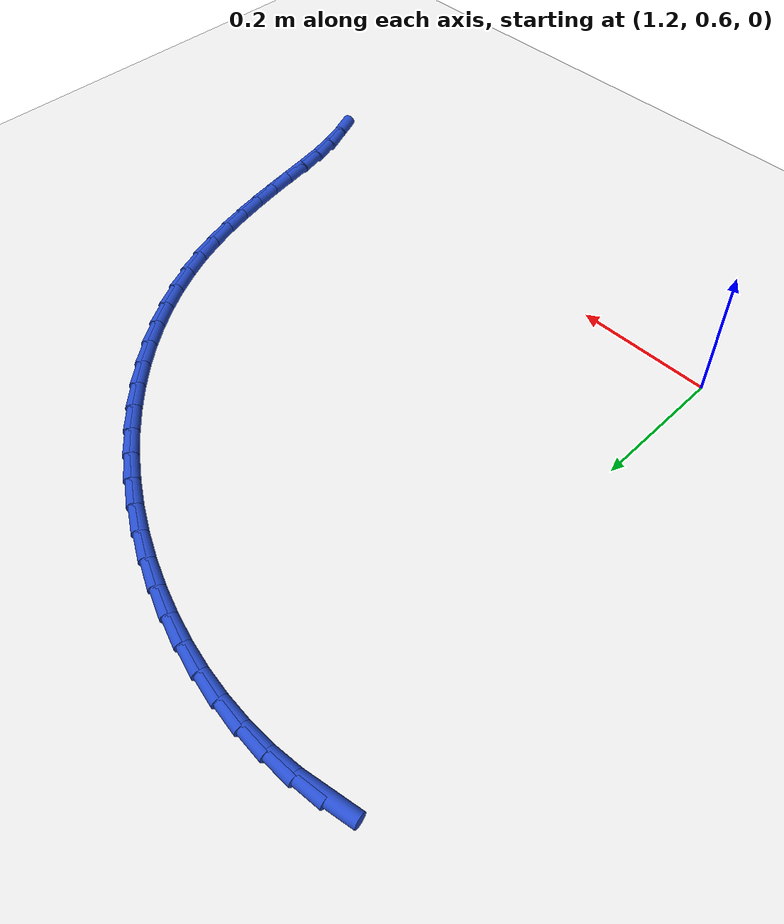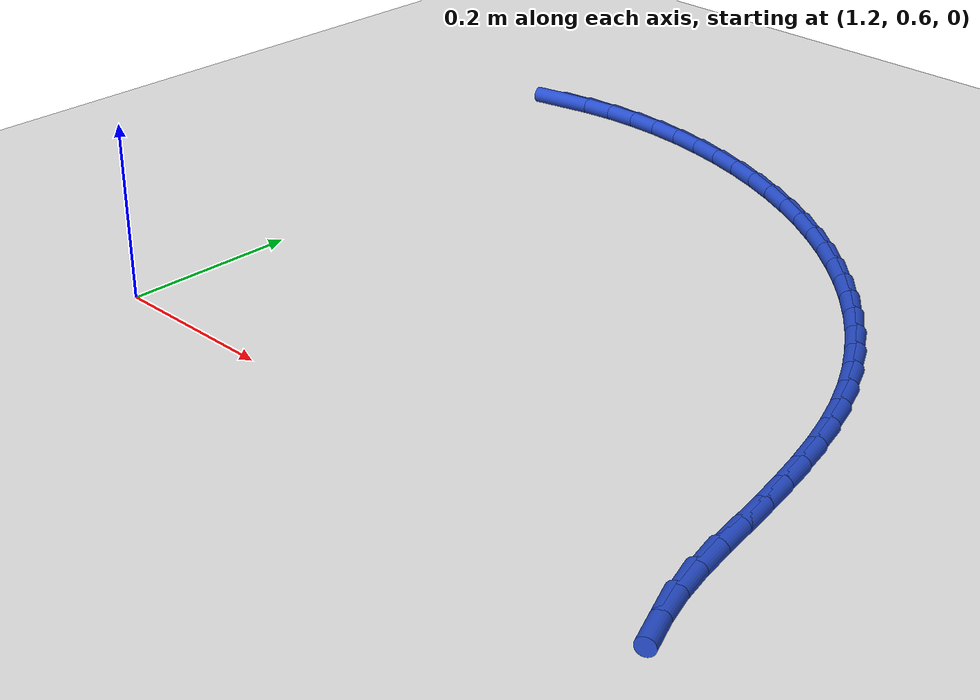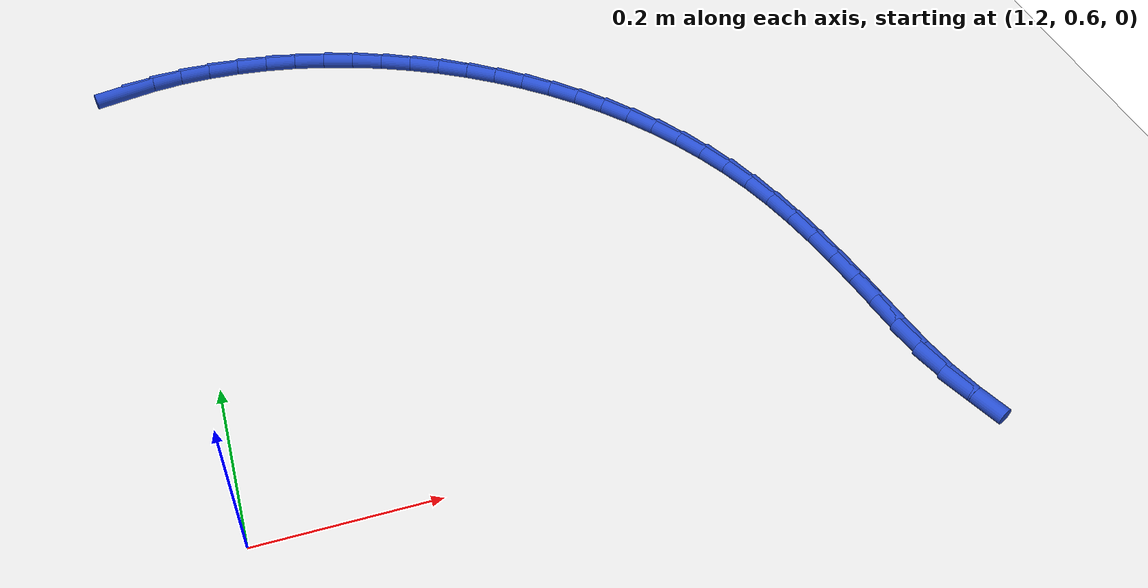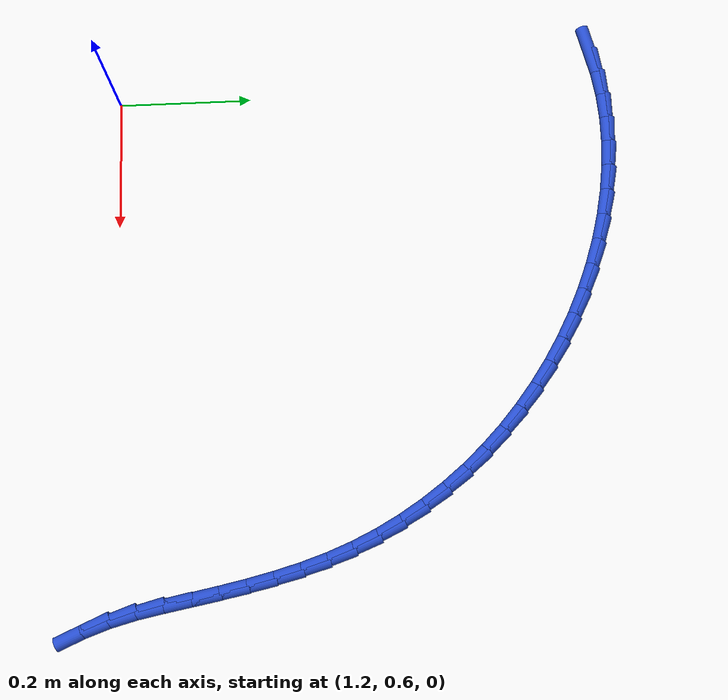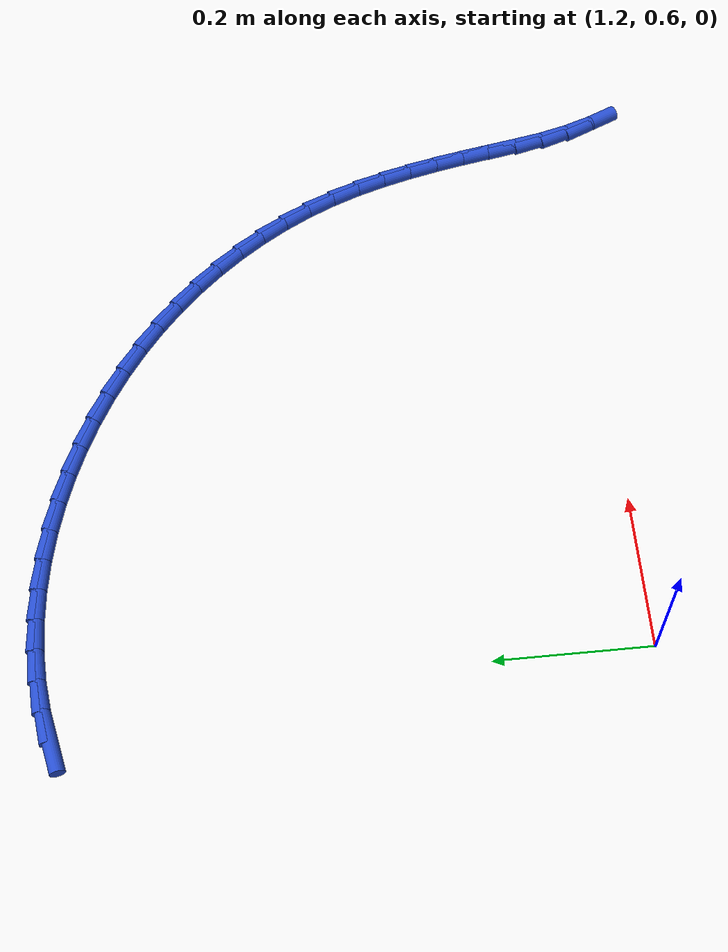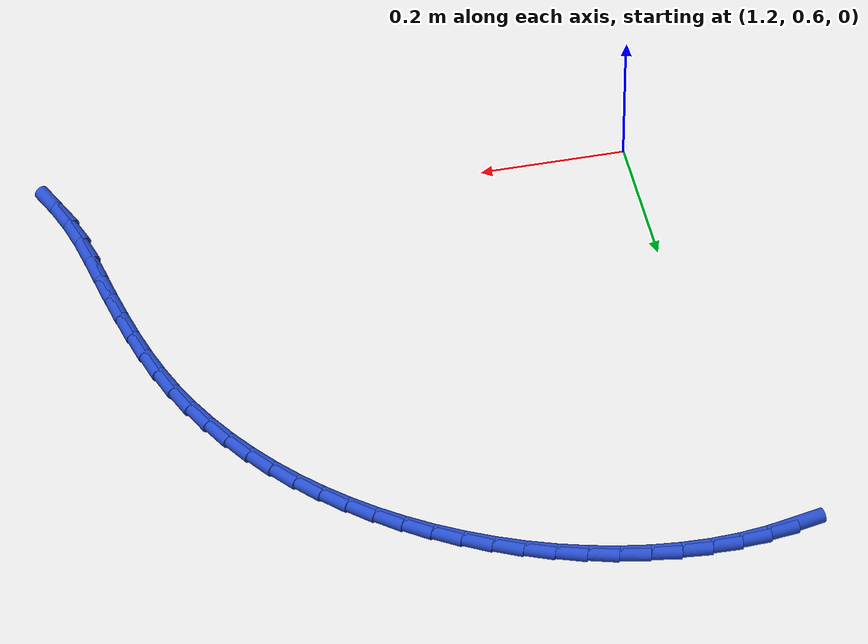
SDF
<sdf version="1.6">
 <world name="default">
  <model name="ground_plane">
   <static>1</static>
   <link name="link">
    <collision name="collision">
     <geometry><plane><normal>0 0 1</normal><size>100 100</size></plane></geometry>
     <surface><friction><ode><mu>100</mu><mu2>50</mu2></ode></friction></surface>
    </collision>
    <visual name="visual">
     <cast_shadows>0</cast_shadows>
     <geometry><plane><normal>0 0 1</normal><size>100 100</size></plane></geometry>
     <material>
      <script><uri>file://media/materials/scripts/gazebo.material</uri><name>Gazebo/WhiteGlow</name></script>
     </material>
    </visual>
   </link>
  </model>
  <model name="line">
   <link name="link_48">
    <pose>1.1459832156904328 1.3300588731528682 0.01 0 1.57 0.20492092542615195</pose>
    <collision name="collision">
     <geometry><cylinder><radius>0.01</radius><length>0.08</length></cylinder></geometry>
    </collision>
    <visual name="visual">
     <material>
      <script><name>Gazebo/Blue</name><uri>file://media/materials/scripts/gazebo.material</uri></script>
     </material>
     <geometry><cylinder><radius>0.01</radius><length>0.08</length></cylinder></geometry>
    </visual>
   </link>
   <link name="link_49">
    <pose>1.1833509128777688 1.3378253127609787 0.01 0 1.57 0.12072873864360992</pose>
    <collision name="collision">
     <geometry><cylinder><radius>0.01</radius><length>0.08</length></cylinder></geometry>
    </collision>
    <visual name="visual">
     <material>
      <script><name>Gazebo/Blue</name><uri>file://media/materials/scripts/gazebo.material</uri></script>
     </material>
     <geometry><cylinder><radius>0.01</radius><length>0.08</length></cylinder></geometry>
    </visual>
   </link>
   <link name="link_50">
    <pose>1.2215900465760243 1.3424644361408657 0.01 0 1.57 0.042097341559704966</pose>
    <collision name="collision">
     <geometry><cylinder><radius>0.01</radius><length>0.08</length></cylinder></geometry>
    </collision>
    <visual name="visual">
     <material>
      <script><name>Gazebo/Blue</name><uri>file://media/materials/scripts/gazebo.material</uri></script>
     </material>
     <geometry><cylinder><radius>0.01</radius><length>0.08</length></cylinder></geometry>
    </visual>
   </link>
   <link name="link_51">
    <pose>1.2604875647948566 1.3441028862450553 0.01 0 1.57 -0.031395138302547976</pose>
    <collision name="collision">
     <geometry><cylinder><radius>0.01</radius><length>0.08</length></cylinder></geometry>
    </collision>
    <visual name="visual">
     <material>
      <script><name>Gazebo/Blue</name><uri>file://media/materials/scripts/gazebo.material</uri></script>
     </material>
     <geometry><cylinder><radius>0.01</radius><length>0.08</length></cylinder></geometry>
    </visual>
   </link>
   <link name="link_52">
    <pose>1.2998304155439244 1.3428673060260736 0.01 0 1.57 -0.10030543693854967</pose>
    <collision name="collision">
     <geometry><cylinder><radius>0.01</radius><length>0.08</length></cylinder></geometry>
    </collision>
    <visual name="visual">
     <material>
      <script><name>Gazebo/Blue</name><uri>file://media/materials/scripts/gazebo.material</uri></script>
     </material>
     <geometry><cylinder><radius>0.01</radius><length>0.08</length></cylinder></geometry>
    </visual>
   </link>
   <link name="link_53">
    <pose>1.3394055468328856 1.3388843384364473 0.01 0 1.57 -0.16526299212392126</pose>
    <collision name="collision">
     <geometry><cylinder><radius>0.01</radius><length>0.08</length></cylinder></geometry>
    </collision>
    <visual name="visual">
     <material>
      <script><name>Gazebo/Blue</name><uri>file://media/materials/scripts/gazebo.material</uri></script>
     </material>
     <geometry><cylinder><radius>0.01</radius><length>0.08</length></cylinder></geometry>
    </visual>
   </link>
   <link name="link_54">
    <pose>1.3789999066713992 1.3322806264287037 0.01 0 1.57 -0.22692853462692986</pose>
    <collision name="collision">
     <geometry><cylinder><radius>0.01</radius><length>0.08</length></cylinder></geometry>
    </collision>
    <visual name="visual">
     <material>
      <script><name>Gazebo/Blue</name><uri>file://media/materials/scripts/gazebo.material</uri></script>
     </material>
     <geometry><cylinder><radius>0.01</radius><length>0.08</length></cylinder></geometry>
    </visual>
   </link>
   <link name="link_55">
    <pose>1.4184004430691222 1.3231828129553687 0.01 0 1.57 -0.2859699649763472</pose>
    <collision name="collision">
     <geometry><cylinder><radius>0.01</radius><length>0.08</length></cylinder></geometry>
    </collision>
    <visual name="visual">
     <material>
      <script><name>Gazebo/Blue</name><uri>file://media/materials/scripts/gazebo.material</uri></script>
     </material>
     <geometry><cylinder><radius>0.01</radius><length>0.08</length></cylinder></geometry>
    </visual>
   </link>
   <link name="link_56">
    <pose>1.457394104035713 1.3117175409689683 0.01 0 1.57 -0.34305127444333555</pose>
    <collision name="collision">
     <geometry><cylinder><radius>0.01</radius><length>0.08</length></cylinder></geometry>
    </collision>
    <visual name="visual">
     <material>
      <script><name>Gazebo/Blue</name><uri>file://media/materials/scripts/gazebo.material</uri></script>
     </material>
     <geometry><cylinder><radius>0.01</radius><length>0.08</length></cylinder></geometry>
    </visual>
   </link>
   <link name="link_57">
    <pose>1.4957678375808297 1.2980114534220297 0.01 0 1.57 -0.39883073174027717</pose>
    <collision name="collision">
     <geometry><cylinder><radius>0.01</radius><length>0.08</length></cylinder></geometry>
    </collision>
    <visual name="visual">
     <material>
      <script><name>Gazebo/Blue</name><uri>file://media/materials/scripts/gazebo.material</uri></script>
     </material>
     <geometry><cylinder><radius>0.01</radius><length>0.08</length></cylinder></geometry>
    </visual>
   </link>
   <link name="link_58">
    <pose>1.5333085917141303 1.2821911932670793 0.01 0 1.57 -0.45396535825029377</pose>
    <collision name="collision">
     <geometry><cylinder><radius>0.01</radius><length>0.08</length></cylinder></geometry>
    </collision>
    <visual name="visual">
     <material>
      <script><name>Gazebo/Blue</name><uri>file://media/materials/scripts/gazebo.material</uri></script>
     </material>
     <geometry><cylinder><radius>0.01</radius><length>0.08</length></cylinder></geometry>
    </visual>
   </link>
   <link name="link_59">
    <pose>1.5698033365688513 1.2643833956277164 0.01 0 1.57 -0.5089949627493194</pose>
    <collision name="collision">
     <geometry><cylinder><radius>0.01</radius><length>0.08</length></cylinder></geometry>
    </collision>
    <visual name="visual">
     <material>
      <script><name>Gazebo/Blue</name><uri>file://media/materials/scripts/gazebo.material</uri></script>
     </material>
     <geometry><cylinder><radius>0.01</radius><length>0.08</length></cylinder></geometry>
    </visual>
   </link>
   <link name="link_60">
    <pose>1.6050672943729332 1.2447046979870533 0.01 0 1.57 -0.5639861529377335</pose>
    <collision name="collision">
     <geometry><cylinder><radius>0.01</radius><length>0.08</length></cylinder></geometry>
    </collision>
    <visual name="visual">
     <material>
      <script><name>Gazebo/Blue</name><uri>file://media/materials/scripts/gazebo.material</uri></script>
     </material>
     <geometry><cylinder><radius>0.01</radius><length>0.08</length></cylinder></geometry>
    </visual>
   </link>
   <link name="link_61">
    <pose>1.6389992879424893 1.223242153875795 0.01 0 1.57 -0.6190331217928586</pose>
    <collision name="collision">
     <geometry><cylinder><radius>0.01</radius><length>0.08</length></cylinder></geometry>
    </collision>
    <visual name="visual">
     <material>
      <script><name>Gazebo/Blue</name><uri>file://media/materials/scripts/gazebo.material</uri></script>
     </material>
     <geometry><cylinder><radius>0.01</radius><length>0.08</length></cylinder></geometry>
    </visual>
   </link>
   <link name="link_62">
    <pose>1.6715135299659178 1.2000773707714638 0.01 0 1.57 -0.6742856245499746</pose>
    <collision name="collision">
     <geometry><cylinder><radius>0.01</radius><length>0.08</length></cylinder></geometry>
    </collision>
    <visual name="visual">
     <material>
      <script><name>Gazebo/Blue</name><uri>file://media/materials/scripts/gazebo.material</uri></script>
     </material>
     <geometry><cylinder><radius>0.01</radius><length>0.08</length></cylinder></geometry>
    </visual>
   </link>
   <link name="link_63">
    <pose>1.702524233131617 1.1752919561515842 0.01 0 1.57 -0.729900577716644</pose>
    <collision name="collision">
     <geometry><cylinder><radius>0.01</radius><length>0.08</length></cylinder></geometry>
    </collision>
    <visual name="visual">
     <material>
      <script><name>Gazebo/Blue</name><uri>file://media/materials/scripts/gazebo.material</uri></script>
     </material>
     <geometry><cylinder><radius>0.01</radius><length>0.08</length></cylinder></geometry>
    </visual>
   </link>
   <link name="link_64">
    <pose>1.7319456101279849 1.148967517493678 0.01 0 1.57 -0.7860391305130573</pose>
    <collision name="collision">
     <geometry><cylinder><radius>0.01</radius><length>0.08</length></cylinder></geometry>
    </collision>
    <visual name="visual">
     <material>
      <script><name>Gazebo/Blue</name><uri>file://media/materials/scripts/gazebo.material</uri></script>
     </material>
     <geometry><cylinder><radius>0.01</radius><length>0.08</length></cylinder></geometry>
    </visual>
   </link>
   <link name="link_65">
    <pose>1.7596918736434195 1.1211856622752692 0.01 0 1.57 -0.8428634325704437</pose>
    <collision name="collision">
     <geometry><cylinder><radius>0.01</radius><length>0.08</length></cylinder></geometry>
    </collision>
    <visual name="visual">
     <material>
      <script><name>Gazebo/Blue</name><uri>file://media/materials/scripts/gazebo.material</uri></script>
     </material>
     <geometry><cylinder><radius>0.01</radius><length>0.08</length></cylinder></geometry>
    </visual>
   </link>
   <link name="link_66">
    <pose>1.7856772363663191 1.0920279979738807 0.01 0 1.57 -0.9005329580310644</pose>
    <collision name="collision">
     <geometry><cylinder><radius>0.01</radius><length>0.08</length></cylinder></geometry>
    </collision>
    <visual name="visual">
     <material>
      <script><name>Gazebo/Blue</name><uri>file://media/materials/scripts/gazebo.material</uri></script>
     </material>
     <geometry><cylinder><radius>0.01</radius><length>0.08</length></cylinder></geometry>
    </visual>
   </link>
   <link name="link_67">
    <pose>1.8098159109850809 1.0615761320670354 0.01 0 1.57 -0.9592002456315628</pose>
    <collision name="collision">
     <geometry><cylinder><radius>0.01</radius><length>0.08</length></cylinder></geometry>
    </collision>
    <visual name="visual">
     <material>
      <script><name>Gazebo/Blue</name><uri>file://media/materials/scripts/gazebo.material</uri></script>
     </material>
     <geometry><cylinder><radius>0.01</radius><length>0.08</length></cylinder></geometry>
    </visual>
   </link>
   <link name="link_68">
    <pose>1.8320221101881038 1.0299116720322565 0.01 0 1.57 -1.0190059330663983</pose>
    <collision name="collision">
     <geometry><cylinder><radius>0.01</radius><length>0.08</length></cylinder></geometry>
    </collision>
    <visual name="visual">
     <material>
      <script><name>Gazebo/Blue</name><uri>file://media/materials/scripts/gazebo.material</uri></script>
     </material>
     <geometry><cylinder><radius>0.01</radius><length>0.08</length></cylinder></geometry>
    </visual>
   </link>
   <link name="link_69">
    <pose>1.852210046663786 0.9971162253470678 0.01 0 1.57 -1.080073008997513</pose>
    <collision name="collision">
     <geometry><cylinder><radius>0.01</radius><length>0.08</length></cylinder></geometry>
    </collision>
    <visual name="visual">
     <material>
      <script><name>Gazebo/Blue</name><uri>file://media/materials/scripts/gazebo.material</uri></script>
     </material>
     <geometry><cylinder><radius>0.01</radius><length>0.08</length></cylinder></geometry>
    </visual>
   </link>
   <link name="link_70">
    <pose>1.8702939331005255 0.9632713994889917 0.01 0 1.57 -1.1425002853315396</pose>
    <collision name="collision">
     <geometry><cylinder><radius>0.01</radius><length>0.08</length></cylinder></geometry>
    </collision>
    <visual name="visual">
     <material>
      <script><name>Gazebo/Blue</name><uri>file://media/materials/scripts/gazebo.material</uri></script>
     </material>
     <geometry><cylinder><radius>0.01</radius><length>0.08</length></cylinder></geometry>
    </visual>
   </link>
   <link name="link_71">
    <pose>1.886187982186719 0.9284588019355517 0.01 0 1.57 -1.2054431026894072</pose>
    <collision name="collision">
     <geometry><cylinder><radius>0.01</radius><length>0.08</length></cylinder></geometry>
    </collision>
    <visual name="visual">
     <material>
      <script><name>Gazebo/Blue</name><uri>file://media/materials/scripts/gazebo.material</uri></script>
     </material>
     <geometry><cylinder><radius>0.01</radius><length>0.08</length></cylinder></geometry>
    </visual>
   </link>
   <link name="link_72">
    <pose>1.899841794475258 0.892765072195211 0.01 0 1.57 -1.2618885638139103</pose>
    <collision name="collision">
     <geometry><cylinder><radius>0.01</radius><length>0.08</length></cylinder></geometry>
    </collision>
    <visual name="visual">
     <material>
      <script><name>Gazebo/Blue</name><uri>file://media/materials/scripts/gazebo.material</uri></script>
     </material>
     <geometry><cylinder><radius>0.01</radius><length>0.08</length></cylinder></geometry>
    </visual>
   </link>
   <link name="link_73">
    <pose>1.9114738467684727 0.8563150830415853 0.01 0 1.57 -1.3084685962550366</pose>
    <collision name="collision">
     <geometry><cylinder><radius>0.01</radius><length>0.08</length></cylinder></geometry>
    </collision>
    <visual name="visual">
     <material>
      <script><name>Gazebo/Blue</name><uri>file://media/materials/scripts/gazebo.material</uri></script>
     </material>
     <geometry><cylinder><radius>0.01</radius><length>0.08</length></cylinder></geometry>
    </visual>
   </link>
   <link name="link_74">
    <pose>1.9214260594178705 0.8192512604905597 0.01 0 1.57 -1.3451869962194523</pose>
    <collision name="collision">
     <geometry><cylinder><radius>0.01</radius><length>0.08</length></cylinder></geometry>
    </collision>
    <visual name="visual">
     <material>
      <script><name>Gazebo/Blue</name><uri>file://media/materials/scripts/gazebo.material</uri></script>
     </material>
     <geometry><cylinder><radius>0.01</radius><length>0.08</length></cylinder></geometry>
    </visual>
   </link>
   <link name="link_75">
    <pose>1.9300410007329047 0.7817161226953807 0.01 0 1.57 -1.3721960520323866</pose>
    <collision name="collision">
     <geometry><cylinder><radius>0.01</radius><length>0.08</length></cylinder></geometry>
    </collision>
    <visual name="visual">
     <material>
      <script><name>Gazebo/Blue</name><uri>file://media/materials/scripts/gazebo.material</uri></script>
     </material>
     <geometry><cylinder><radius>0.01</radius><length>0.08</length></cylinder></geometry>
    </visual>
   </link>
   <link name="link_76">
    <pose>1.9376612390230274 0.7438521878092934 0.01 0 1.57 -1.3896740966101542</pose>
    <collision name="collision">
     <geometry><cylinder><radius>0.01</radius><length>0.08</length></cylinder></geometry>
    </collision>
    <visual name="visual">
     <material>
      <script><name>Gazebo/Blue</name><uri>file://media/materials/scripts/gazebo.material</uri></script>
     </material>
     <geometry><cylinder><radius>0.01</radius><length>0.08</length></cylinder></geometry>
    </visual>
   </link>
   <link name="link_77">
    <pose>1.9446293425976904 0.7058019739855439 0.01 0 1.57 -1.3976938696370937</pose>
    <collision name="collision">
     <geometry><cylinder><radius>0.01</radius><length>0.08</length></cylinder></geometry>
    </collision>
    <visual name="visual">
     <material>
      <script><name>Gazebo/Blue</name><uri>file://media/materials/scripts/gazebo.material</uri></script>
     </material>
     <geometry><cylinder><radius>0.01</radius><length>0.08</length></cylinder></geometry>
    </visual>
   </link>
   <link name="link_78">
    <pose>1.9512900071246404 0.6677089069264774 0.01 0 1.57 -1.3842742013031442</pose>
    <collision name="collision">
     <geometry><cylinder><radius>0.01</radius><length>0.08</length></cylinder></geometry>
    </collision>
    <visual name="visual">
     <material>
      <script><name>Gazebo/Blue</name><uri>file://media/materials/scripts/gazebo.material</uri></script>
     </material>
     <geometry><cylinder><radius>0.01</radius><length>0.08</length></cylinder></geometry>
    </visual>
   </link>
   <link name="link_79">
    <pose>1.9584246303310406 0.6299027131385778 0.01 0 1.57 -1.323874358294375</pose>
    <collision name="collision">
     <geometry><cylinder><radius>0.01</radius><length>0.08</length></cylinder></geometry>
    </collision>
    <visual name="visual">
     <material>
      <script><name>Gazebo/Blue</name><uri>file://media/materials/scripts/gazebo.material</uri></script>
     </material>
     <geometry><cylinder><radius>0.01</radius><length>0.08</length></cylinder></geometry>
    </visual>
   </link>
   <link name="link_80">
    <pose>1.967703436772215 0.5930916597823828 0.01 0 1.57 -1.243899537816027</pose>
    <collision name="collision">
     <geometry><cylinder><radius>0.01</radius><length>0.08</length></cylinder></geometry>
    </collision>
    <visual name="visual">
     <material>
      <script><name>Gazebo/Blue</name><uri>file://media/materials/scripts/gazebo.material</uri></script>
     </material>
     <geometry><cylinder><radius>0.01</radius><length>0.08</length></cylinder></geometry>
    </visual>
   </link>
   <link name="link_81">
    <pose>1.979760217867356 0.5575323584339723 0.01 0 1.57 -1.1704270202718776</pose>
    <collision name="collision">
     <geometry><cylinder><radius>0.01</radius><length>0.08</length></cylinder></geometry>
    </collision>
    <visual name="visual">
     <material>
      <script><name>Gazebo/Blue</name><uri>file://media/materials/scripts/gazebo.material</uri></script>
     </material>
     <geometry><cylinder><radius>0.01</radius><length>0.08</length></cylinder></geometry>
    </visual>
   </link>
  </model>
 </world>
</sdf>
